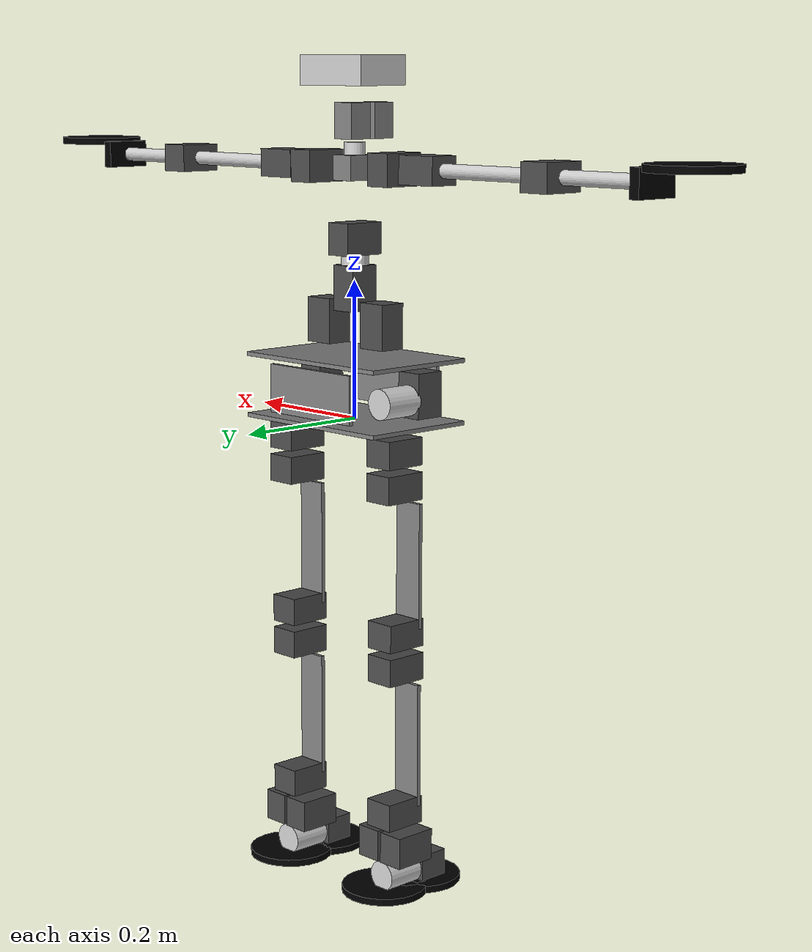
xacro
<?xml version="1.0" ?>
<robot xmlns:xacro="http://ros.org/wiki/xacro" name="tflow_model">

    <xacro:property name="dynamixel_mx28_x" value="0.0356"/>
    <xacro:property name="dynamixel_mx28_y" value="0.0355"/>
    <xacro:property name="dynamixel_mx28_z" value="0.0506"/>
    <xacro:property name="dynamixel_mx28_weight" value="0.072"/>

    <xacro:property name="dynamixel_mx64_x" value="0.0402"/>
    <xacro:property name="dynamixel_mx64_y" value="0.041"/>
    <xacro:property name="dynamixel_mx64_z" value="0.0611"/>
    <xacro:property name="dynamixel_mx64_weight" value="0.126"/>

    <xacro:property name="dynamixel_mx106_x" value="0.0402"/>
    <xacro:property name="dynamixel_mx106_y" value="0.046"/>
    <xacro:property name="dynamixel_mx106_z" value="0.0651"/>
    <xacro:property name="dynamixel_mx106_weight" value="0.153"/>

    <xacro:macro name="dynamixelmx28" params="roll pitch yaw x y z">
        <visual>
            <geometry>
                <box size="${dynamixel_mx28_x} ${dynamixel_mx28_y} ${dynamixel_mx28_z}"/>
            </geometry>
            <origin rpy="${roll} ${pitch} ${yaw}" xyz="${x} ${y} ${z}"/>
            <material name="silver">
                <color rgba="0.5 0.5 0.5 1"/>
            </material>
        </visual>
        <collision>
          <geometry>
            <box size="${dynamixel_mx28_x} ${dynamixel_mx28_y} ${dynamixel_mx28_z}"/>
          </geometry>
          <origin rpy="${roll} ${pitch} ${yaw}" xyz="${x} ${y} ${z}"/>
        </collision>
        <inertial>
            <mass value="${dynamixel_mx28_weight}"/>
            <inertia ixx="0.0" ixy="0.0" ixz="0.0" iyy="0.0" iyz="0.0" izz="0.0"/>
        </inertial>
    </xacro:macro>

    <xacro:macro name="dynamixelmx64" params="roll pitch yaw x y z">
        <visual>
            <geometry>
                <box size="${dynamixel_mx64_x} ${dynamixel_mx64_y} ${dynamixel_mx64_z}"/>
            </geometry>
            <origin rpy="${roll} ${pitch} ${yaw}" xyz="${x} ${y} ${z}"/>
            <material name="silver">
                <color rgba="0.5 0.5 0.5 1"/>
            </material>
        </visual>
        <collision>
          <geometry>
            <box size="${dynamixel_mx64_x} ${dynamixel_mx64_y} ${dynamixel_mx64_z}"/>
          </geometry>
          <origin rpy="${roll} ${pitch} ${yaw}" xyz="${x} ${y} ${z}"/>
        </collision>
        <inertial>
            <mass value="${dynamixel_mx64_weight}"/>
            <inertia ixx="0.0" ixy="0.0" ixz="0.0" iyy="0.0" iyz="0.0" izz="0.0"/>
        </inertial>
    </xacro:macro>

    <xacro:macro name="dynamixelmx106" params="roll pitch yaw x y z">
        <visual>
            <geometry>
                <box size="${dynamixel_mx106_x} ${dynamixel_mx106_y} ${dynamixel_mx106_z}"/>
            </geometry>
            <origin rpy="${roll} ${pitch} ${yaw}" xyz="${x} ${y} ${z}"/>
            <material name="silver">
                <color rgba="0.3 0.3 0.3 1"/>
            </material>
        </visual>
        <collision>
          <geometry>
            <box size="${dynamixel_mx106_x} ${dynamixel_mx106_y} ${dynamixel_mx106_z}"/>
          </geometry>
          <origin rpy="${roll} ${pitch} ${yaw}" xyz="${x} ${y} ${z}"/>
        </collision>
        <inertial>
            <mass value="${dynamixel_mx106_weight}"/>
            <inertia ixx="0.0" ixy="0.0" ixz="0.0" iyy="0.0" iyz="0.0" izz="0.0"/>
        </inertial>
    </xacro:macro>

    <xacro:macro name="link_cylinder" params="le r roll pitch yaw x y z">
        <visual>
            <geometry>
                <cylinder length="${le}" radius="${r}"/>
            </geometry>
            <origin rpy="${roll} ${pitch} ${yaw}" xyz="${x} ${y} ${z}"/>
            <material name="white">
                <color rgba="0.8 0.8 0.8 1"/>
            </material>
        </visual>
        <collision>
          <geometry>
            <cylinder length="${le}" radius="${r}"/>
          </geometry>
          <origin rpy="${roll} ${pitch} ${yaw}" xyz="${x} ${y} ${z}"/>
        </collision>
        <inertial>
            <mass value="${le*r}"/>
            <inertia ixx="0.0" ixy="0.0" ixz="0.0" iyy="0.0" iyz="0.0" izz="0.0"/>
        </inertial>
    </xacro:macro>

    <xacro:macro name="telapak" params="le r roll pitch yaw x y z">
        <visual>
            <geometry>
                <cylinder length="${le}" radius="${r}"/>
            </geometry>
            <origin rpy="${roll} ${pitch} ${yaw}" xyz="${x} ${y} ${z}"/>
            <material name="black">
                <color rgba="0 0 0 1"/>
            </material>
        </visual>
        <collision>
          <geometry>
            <cylinder length="${le}" radius="${r}"/>
          </geometry>
          <origin rpy="${roll} ${pitch} ${yaw}" xyz="${x} ${y} ${z}"/>
        </collision>
        <inertial>
            <mass value="${le*r}"/>
            <inertia ixx="0.0" ixy="0.0" ixz="0.0" iyy="0.0" iyz="0.0" izz="0.0"/>
        </inertial>
    </xacro:macro>

    <xacro:macro name="link_box" params="bx by bz roll pitch yaw x y z">
        <visual>
            <geometry>
                <box size="${bx} ${by} ${bz}"/>
            </geometry>
            <origin rpy="${roll} ${pitch} ${yaw}" xyz="${x} ${y} ${z}"/>
            <material name="black">
                <color rgba="0 0 0 1"/>
            </material>
        </visual>
        <collision>
          <geometry>
            <box size="${bx} ${by} ${bz}"/>
          </geometry>
          <origin rpy="${roll} ${pitch} ${yaw}" xyz="${x} ${y} ${z}"/>
        </collision>
        <inertial>
            <mass value="${bx*by*bz}"/>
            <inertia ixx="0.0" ixy="0.0" ixz="0.0" iyy="0.0" iyz="0.0" izz="0.0"/>
        </inertial>
    </xacro:macro>

     <xacro:macro name="link_box2" params="bx by bz roll pitch yaw x y z">
        <visual>
            <geometry>
                <box size="${bx} ${by} ${bz}"/>
            </geometry>
            <origin rpy="${roll} ${pitch} ${yaw}" xyz="${x} ${y} ${z}"/>
            <material name="white">
                <color rgba="0.8 0.8 0.8 1"/>
            </material>
        </visual>
        <collision>
          <geometry>
            <box size="${bx} ${by} ${bz}"/>
          </geometry>
          <origin rpy="${roll} ${pitch} ${yaw}" xyz="${x} ${y} ${z}"/>
        </collision>
        <inertial>
            <mass value="${bx*by*bz}"/>
            <inertia ixx="0.0" ixy="0.0" ixz="0.0" iyy="0.0" iyz="0.0" izz="0.0"/>
        </inertial>
    </xacro:macro>

    <xacro:macro name="telapak_tangan" params="le r roll pitch yaw x y z">
        <visual>
            <geometry>
                <cylinder length="${le}" radius="${r}"/>
            </geometry>
            <origin rpy="${roll} ${pitch} ${yaw}" xyz="${x} ${y} ${z}"/>
            <material name="black">
                <color rgba="0 0 0 1"/>
            </material>
        </visual>
        <collision>
          <geometry>
            <cylinder length="${le}" radius="${r}"/>
          </geometry>
          <origin rpy="${roll} ${pitch} ${yaw}" xyz="${x} ${y} ${z}"/>
        </collision>
        <inertial>
            <mass value="${le*r}"/>
            <inertia ixx="0.0" ixy="0.0" ixz="0.0" iyy="0.0" iyz="0.0" izz="0.0"/>
        </inertial>
    </xacro:macro>

<!-- BASE -->

  <link name="base_link">
    <visual>
      <geometry>
	<box size="0 0 0"/>
      </geometry>
      <origin rpy="0 0 0" xyz="0 0 0"/>
   	<material name = "DarkGray" >
     		<color rgba = "0.3 0.3 0.3 1.0" />
      	</material>
    </visual>

    <collision>
      <geometry>
	<box size="0.18 0.12 0.08"/>
      </geometry>
      <origin rpy="0 0 0" xyz="0 0 0"/>
    </collision>
    <inertial>
	<mass value="1"/>
	<inertia ixx="1.0" ixy="0.0" ixz="0.0" iyy="1.0" iyz="0.0" izz="1.0"/>
    </inertial>
  </link>

    <!-- PERUT -->
    <link name="servo_perut_roll_1">
        <xacro:dynamixelmx106 roll="0.0" pitch="0.0" yaw = "1.57" x="0" y="0" z="0"/>
    </link>

    <link name="servo_perut_roll_2">
        <xacro:dynamixelmx106 roll="0.0" pitch="0.0" yaw = "-1.57" x="0" y="0" z="0"/>
    </link>

    <link name="servo_perut_pitch">
        <xacro:dynamixelmx106 roll="0.0" pitch="0.0" yaw = "0" x="0" y="0" z="0"/>
    </link>

    <link name="link_perut_yaw">
        <xacro:link_cylinder le="0.04" r="0.02" roll="0.0" pitch="0.0" yaw ="0" x="0" y="0" z="0.03"/>
    </link>

    <link name="servo_perut_yaw">
        <xacro:dynamixelmx106 roll="-1.57" pitch="0.0" yaw = "0" x="0" y="0" z="0.02"/>
    </link>
    <!-- PERUT_END -->

    <!-- Kepala -->

    <link name="servo_kepala_yaw">
        <xacro:dynamixelmx28 roll="1.57" pitch="0.0" yaw = "0" x="0" y="0" z="0.0"/>
    </link>

    <link name="link_leher">
    	<xacro:link_cylinder le="0.031" r="0.015" roll="0.0" pitch="0.0" yaw ="0" x="0" y="0" z="0.0	"/>
   	</link>

    <link name="servo_kepala_pitch">
        <xacro:dynamixelmx28 roll="0.00" pitch="0.0" yaw = "0" x="0" y="-0.04" z="0.0"/>
    </link>

    <link name="servo_kepala_roll">
        <xacro:dynamixelmx28 roll="0.00" pitch="0.0" yaw = "0" x="0" y="0.00" z="0.0"/>
    </link>

    <link name="kepala">
    	<xacro:link_box2 bx="0.125" by="0.085" bz="0.042" roll="0.0" pitch="0.0" yaw ="0" x="0" y="0" z="0.07	"/>
   	</link>

    <!-- Kepala_END -->

    <!-- Tangan_Kanan -->
    <link name="servo_bahu_kanan_roll">
        <xacro:dynamixelmx106 roll="-1.57" pitch="0" yaw = "0" x="0" y="0" z="0"/>
    </link>

    <link name="servo_bahu_kanan_pitch">
        <xacro:dynamixelmx106 roll="0" pitch="1.57" yaw = "0" x="0" y="0" z="0"/>
    </link>

    <link name="link_siku_kanan">
        <xacro:link_cylinder le="0.195" r="0.01" roll="0.0" pitch="1.57" yaw ="0" x="${0.195/2}" y="0" z="0.0"/>
    </link>

    <link name="servo_siku_kanan_pitch">
        <xacro:dynamixelmx106 roll="0" pitch="1.57" yaw = "1.57" x="0" y="0" z="0"/>
    </link>

    <link name="link_lengan_kanan">
        <xacro:link_cylinder le="0.15" r="0.01" roll="0.0" pitch="1.57" yaw ="0" x="${-(0.16/2)}" y="0" z="0.0"/>
    </link>

    <link name="link_telapak_kanan">
        <xacro:link_box bx="0.015" by="0.07" bz="0.04" roll="0.0" pitch="0" yaw ="0" x="0" y="0" z="0.0"/>
    </link>

    <link name="telapak_tangan_kanan">
        <xacro:telapak_tangan le="0.01" r="${0.125/2}" roll="0.0" pitch="0" yaw ="0" x="0" y="0" z="0.0"/>
    </link>
    <!-- Tangan_Kanan_END -->

    <!-- Tangan_Kiri -->
    <link name="servo_bahu_kiri_roll">
        <xacro:dynamixelmx106 roll="1.57" pitch="0" yaw = "0" x="0" y="0" z="0"/>
    </link>

    <link name="servo_bahu_kiri_pitch">
        <xacro:dynamixelmx106 roll="0" pitch="-1.57" yaw = "0" x="0" y="0" z="0"/>
    </link>

    <link name="link_siku_kiri">
        <xacro:link_cylinder le="0.195" r="0.01" roll="0.0" pitch="-1.57" yaw ="0" x="${-(0.195/2)}" y="0" z="0.0"/>
    </link>

    <link name="servo_siku_kiri_pitch">
        <xacro:dynamixelmx106 roll="0" pitch="1.57" yaw = "1.57" x="0" y="0" z="0"/>
    </link>

    <link name="link_lengan_kiri">
        <xacro:link_cylinder le="0.15" r="0.01" roll="0.0" pitch="-1.57" yaw ="0" x="${(0.16/2)}" y="0" z="0.0"/>
    </link>

    <link name="link_telapak_kiri">
        <xacro:link_box bx="0.015" by="0.07" bz="0.04" roll="0.0" pitch="0" yaw ="0" x="0" y="0" z="0.0"/>
    </link>

    <link name="telapak_tangan_kiri">
        <xacro:telapak_tangan le="0.01" r="${0.125/2}" roll="0.0" pitch="0" yaw ="0" x="0" y="0" z="0.0"/>
    </link>
    <!-- Tangan_Kiri_END -->

     <!-- Kepala -->
    <joint name="perut_to_kepala" type="fixed">
        <parent link="servo_perut_yaw"/>
        <child link="servo_kepala_yaw"/> <!--servo_kepala_roll-->
        <origin rpy="0 0 0" xyz="0 0.0 0.12"/>
        <limit effort="300" velocity="0.1" lower="-1.57" upper="1.57"/>
        <dynamics damping="50" friction="1"/>
        <axis xyz="0 0 1" />
    </joint>

    <joint name="tflow_32_kyaw" type="revolute"> <!--kepala_yaw-->
        <parent link="servo_kepala_yaw"/>
        <child link="link_leher"/> <!--servo_kepala_roll-->
        <origin rpy="0 0 0" xyz="0 0.0 0.02"/>
        <limit effort="300" velocity="0.1" lower="-3.14" upper="3.14"/>
        <dynamics damping="50" friction="1"/>
        <axis xyz="0 0 1" />
    </joint>

    <joint name="tflow_33_kpitch" type="revolute"> <!--kepala_pitch-->
        <parent link="link_leher"/>
        <child link="servo_kepala_pitch"/> <!--servo_kepala_roll-->
        <origin rpy="0 0 0" xyz="0 0.0 0.045"/>
        <limit effort="300" velocity="0.1" lower="-1.57" upper="1.57"/>
        <dynamics damping="50" friction="1"/>
        <axis xyz="0 1 0" />
    </joint>

    <joint name="joint_kepala_yaw" type="fixed">
        <parent link="servo_kepala_pitch"/>
        <child link="servo_kepala_roll"/> <!--servo_kepala_roll-->
        <origin rpy="0 0 0" xyz="0 0.005 0.0"/>
        <limit effort="300" velocity="0.1" lower="-3.14" upper="3.14"/>
        <dynamics damping="50" friction="1"/>
        <axis xyz="0 0 1" />
    </joint>

    <joint name="tflow_34_kroll" type="revolute"> <!--kepala_roll-->
        <parent link="servo_kepala_roll"/>
        <child link="kepala"/> <!--servo_kepala_roll-->
        <origin rpy="0 0 0" xyz="0 0.0 0.0"/>
        <limit effort="300" velocity="0.1" lower="-1.57" upper="1.57"/>
        <dynamics damping="50" friction="1"/>
        <axis xyz="1 0 0" />
    </joint>

    <!-- Kepala_END -->

    <!-- PERUT -->
    <joint name="joint_perut_roll" type="fixed">
        <parent link="base_link"/>
        <child link="servo_perut_roll_1"/>
        <origin rpy="0 0 0" xyz="0.055 0.0 0.14"/>
        <limit effort="300" velocity="0.1" lower="-1.57" upper="1.57"/>
        <dynamics damping="50" friction="1"/>
        <axis xyz="1 0 0" />
    </joint>

    <joint name="joint_perut_roll_2" type="fixed">
        <parent link="base_link"/>
        <child link="servo_perut_roll_2"/>
        <origin rpy="0 0 0" xyz="-0.055 0.0 0.14"/>
        <limit effort="300" velocity="0.1" lower="-1.57" upper="1.57"/>
        <dynamics damping="50" friction="1"/>
        <axis xyz="1 0 0" />
    </joint>

    <joint name="tflow_13_proll" type="revolute"> <!--perut_roll-->
        <parent link="servo_perut_roll_1"/>
        <child link="servo_perut_pitch"/>
        <origin rpy="0 0 0" xyz="-0.055 0.0 0.05"/>
        <limit effort="300" velocity="0.1" lower="-1.57" upper="1.57"/>
        <dynamics damping="50" friction="1"/>
        <axis xyz="1 0 0" />
    </joint>

    <joint name="tflow_14_ppitch" type="revolute"> <!--perut_pitch-->
        <parent link="servo_perut_pitch"/>
        <child link="link_perut_yaw"/>
        <origin rpy="0 0 0" xyz="0 0.0 0.0"/>
        <limit effort="300" velocity="0.1" lower="-1.57" upper="1.57"/>
        <dynamics damping="50" friction="1"/>
        <axis xyz="0 1 0" />
    </joint>

    <joint name="tflow_15_pyaw" type="revolute"> <!--perut_yaw-->
        <parent link="link_perut_yaw"/>
        <child link="servo_perut_yaw"/>
        <origin rpy="0 0 0" xyz="0.0 0.0 0.05"/>
        <limit effort="300" velocity="0.1" lower="-1.57" upper="1.57"/>
        <dynamics damping="50" friction="1"/>
        <axis xyz="0 0 1" />
    </joint>

    <!-- PERUT_END -->

    <!-- Tangan_Kanan -->
    <joint name="joint_bahu_kanan_roll" type="fixed">
        <parent link="servo_kepala_yaw"/>
        <child link="servo_bahu_kanan_roll"/>
        <origin rpy="0 0 0" xyz="0.08 0.0 0.0"/>
        <limit effort="300" velocity="0.1" lower="-1.57" upper="1.57"/>
        <dynamics damping="50" friction="1"/>
        <axis xyz="0 0 1" />
    </joint>

    <joint name="tflow_17_bkroll" type="revolute"> <!--bahu_kanan_roll-->
        <parent link="servo_bahu_kanan_roll"/>
        <child link="servo_bahu_kanan_pitch"/>
        <origin rpy="0 0 0" xyz="0.065 0.0 0.0015"/>
        <limit effort="300" velocity="0.1" lower="-3.14" upper="3.14"/>
        <dynamics damping="50" friction="1"/>
        <axis xyz="1 0 0" />
    </joint>

    <joint name="tflow_19_bkyaw" type="revolute"> <!--bahu_kanan_yaw-->
        <parent link="servo_bahu_kanan_pitch"/>
        <child link="link_siku_kanan"/>
        <origin rpy="0 0 0" xyz="0.03 0.0 0.00"/>
        <limit effort="300" velocity="0.1" lower="-2.00" upper="2.00"/>
        <dynamics damping="50" friction="1"/>
        <axis xyz="0 1 0" />
    </joint>

    <joint name="tflow_23_skyaw" type="revolute"> <!--siku_kanan_yaw-->
        <parent link="link_siku_kanan"/>
        <child link="servo_siku_kanan_pitch"/>
        <origin rpy="0 0 0" xyz="0.195 0.0 0.00"/>
        <limit effort="300" velocity="0.1" lower="-2.00" upper="2.00"/>
        <dynamics damping="50" friction="1"/>
        <axis xyz="0 0 1" />
    </joint>

    <joint name="joint_lengan_kanan_yaw" type="fixed">
        <parent link="servo_siku_kanan_pitch"/>
        <child link="link_lengan_kanan"/>
        <origin rpy="0 0 0" xyz="0.16 0.0 0.00"/>
        <limit effort="300" velocity="0.1" lower="-1.57" upper="1.57"/>
        <dynamics damping="50" friction="1"/>
        <axis xyz="0 0 1" />
    </joint>

    <joint name="joint_tangan_kanan" type="fixed">
        <parent link="link_lengan_kanan"/>
        <child link="link_telapak_kanan"/>
        <origin rpy="0 0 0" xyz="${0.015/2} 0.0 0.0"/>
        <limit effort="300" velocity="0.1" lower="-3.14" upper="3.14"/>
        <dynamics damping="50" friction="1"/>
    </joint>

    <joint name="tangan_kanan_EOF" type="fixed">
        <parent link="link_telapak_kanan"/>
        <child link="telapak_tangan_kanan"/>
        <origin rpy="0 0 0" xyz="${0.125/2} 0.0 0.02"/>
        <limit effort="300" velocity="0.1" lower="-3.14" upper="3.14"/>
        <dynamics damping="50" friction="1"/>
    </joint>
    <!-- Tangan_Kanan_END -->

    <!-- Tangan_Kiri -->
    <joint name="joint_bahu_kiri_yaw" type="fixed">
        <parent link="servo_kepala_yaw"/>
        <child link="servo_bahu_kiri_roll"/>
        <origin rpy="0 0 0" xyz="-0.08 0.0 0.0"/>
        <limit effort="300" velocity="0.1" lower="-1.57" upper="1.57"/>
        <dynamics damping="50" friction="1"/>
        <axis xyz="0 0 1" />
        </joint>

    <joint name="tflow_16_bkiroll" type="revolute"> <!--bahu_kiri_roll-->
        <parent link="servo_bahu_kiri_roll"/>
        <child link="servo_bahu_kiri_pitch"/>
        <origin rpy="0 0 0" xyz="-0.065 0.0 0.0015"/>
        <limit effort="300" velocity="0.1" lower="-3.14" upper="3.14"/>
        <dynamics damping="50" friction="1"/>
        <axis xyz="1 0 0" />
    </joint>

    <joint name="tflow_18_bkiyaw" type="revolute"> <!--bahu_kiri_yaw-->
        <parent link="servo_bahu_kiri_pitch"/>
        <child link="link_siku_kiri"/>
        <origin rpy="0 0 0" xyz="-0.03 0.0 0.00"/>
        <limit effort="300" velocity="0.1" lower="-2.00" upper="2.00"/>
        <dynamics damping="50" friction="1"/>
        <axis xyz="0 1 0" />
    </joint>

    <joint name="tflow_22_skiyaw" type="revolute"> <!--siku_kiri_yaw-->
        <parent link="link_siku_kiri"/>
        <child link="servo_siku_kiri_pitch"/>
        <origin rpy="0 0 0" xyz="-0.195 0.0 0.00"/>
        <limit effort="300" velocity="0.1" lower="-2.00" upper="2.00"/>
        <dynamics damping="50" friction="1"/>
        <axis xyz="0 0 1" />
    </joint>

    <joint name="joint_lengan_kiri_yaw" type="fixed">
        <parent link="servo_siku_kiri_pitch"/>
        <child link="link_lengan_kiri"/>
        <origin rpy="0 0 0" xyz="-0.16 0.0 0.00"/>
        <limit effort="300" velocity="0.1" lower="-1.57" upper="1.57"/>
        <dynamics damping="50" friction="1"/>
        <axis xyz="0 0 1" />
    </joint>

    <joint name="joint_tangan_kiri" type="fixed">
        <parent link="link_lengan_kiri"/>
        <child link="link_telapak_kiri"/>
        <origin rpy="0 0 0" xyz="${-(0.015/2)} 0.0 0.0"/>
        <limit effort="300" velocity="0.1" lower="-3.14" upper="3.14"/>
        <dynamics damping="50" friction="1"/>
    </joint>

    <joint name="tangan_kiri_EOF" type="fixed">
        <parent link="link_telapak_kiri"/>
        <child link="telapak_tangan_kiri"/>
        <origin rpy="0 0 0" xyz="${-(0.125/2)} 0.0 0.02"/>
        <limit effort="300" velocity="0.1" lower="-3.14" upper="3.14"/>
        <dynamics damping="50" friction="1"/>
    </joint>

    <!-- Tangan_Kiri_END -->

<!-- KAKI -->

<!-- TEMPAT NUC -->
     <xacro:macro name="link_nuc" params="bx by bz roll pitch yaw x y z">
        <visual>
            <geometry>
                <box size="${bx} ${by} ${bz}"/>
            </geometry>
            <origin rpy="${roll} ${pitch} ${yaw}" xyz="${x} ${y} ${z}"/>
            <material name="silver">
                <color rgba="0.5 0.5 0.5 1"/>
            </material>
        </visual>
        <collision>
          <geometry>
            <box size="${bx} ${by} ${bz}"/>
          </geometry>
          <origin rpy="${roll} ${pitch} ${yaw}" xyz="${x} ${y} ${z}"/>
        </collision>
        <inertial>
            <mass value="${bx*by*bz}"/>
            <inertia ixx="0.0" ixy="0.0" ixz="0.0" iyy="0.0" iyz="0.0" izz="0.0"/>
        </inertial>
    </xacro:macro>

    <link name="link_nucnuc_a">
        <xacro:link_nuc bx="0.266681" by="0.18" bz="0.006" roll="0.0" pitch="0" yaw ="0" x="0" y="0" z="0.0"/>
    </link>
    <link name="link_nucnuc_b">
        <xacro:link_nuc bx="0.266681" by="0.18" bz="0.006" roll="0.0" pitch="0" yaw ="0" x="0" y="0" z="0.0"/>
    </link>
    <link name="link_nucnuc_front">
        <xacro:link_nuc bx="0.166681" by="0.006" bz="0.07" roll="0.0" pitch="0" yaw ="0" x="0" y="0" z="0.0"/>
    </link>
    <link name="link_nucnuc_back">
        <xacro:link_nuc bx="0.166681" by="0.006" bz="0.07" roll="0.0" pitch="0" yaw ="0" x="0" y="0" z="0.0"/>
    </link>

    <joint name="joint_nuc_a" type="fixed">
        <parent link="base_link"/>
        <child link="link_nucnuc_a"/>
        <origin rpy="0 0 0" xyz="0 0 0.09"/>
        <limit effort="300" velocity="0.1" lower="-1.57" upper="1.57"/>
        <dynamics damping="50" friction="1"/>
        <axis xyz="0 0 0" />
    </joint>
    <joint name="joint_nuc_b" type="fixed">
        <parent link="base_link"/>
        <child link="link_nucnuc_b"/>
        <origin rpy="0 0 0" xyz="0 0 0"/>
        <limit effort="300" velocity="0.1" lower="-1.57" upper="1.57"/>
        <dynamics damping="50" friction="1"/>
        <axis xyz="0 0 0" />
    </joint>
    <joint name="joint_nuc_front" type="fixed">
        <parent link="base_link"/>
        <child link="link_nucnuc_front"/>
        <origin rpy="0 0 0" xyz="0 0.085 0.045"/>
        <limit effort="300" velocity="0.1" lower="-1.57" upper="1.57"/>
        <dynamics damping="50" friction="1"/>
        <axis xyz="0 0 0" />
    </joint>
    <joint name="joint_nuc_back" type="fixed">
        <parent link="base_link"/>
        <child link="link_nucnuc_back"/>
        <origin rpy="0 0 0" xyz="0 -0.085 0.045"/>
        <limit effort="300" velocity="0.1" lower="-1.57" upper="1.57"/>
        <dynamics damping="50" friction="1"/>
        <axis xyz="0 0 0" />
    </joint>

<!-- KAKI KANAN-->

     <xacro:macro name="joint_inv" params="bx by bz roll pitch yaw x y z">
        <visual>
            <geometry>
                <box size="${bx} ${by} ${bz}"/>
            </geometry>
            <origin rpy="${roll} ${pitch} ${yaw}" xyz="${x} ${y} ${z}"/>
            <material name="silver">
                <color rgba="0.5 0.5 0.5 1"/>
            </material>
        </visual>
        <collision>
          <geometry>
            <box size="${bx} ${by} ${bz}"/>
          </geometry>
          <origin rpy="${roll} ${pitch} ${yaw}" xyz="${x} ${y} ${z}"/>
        </collision>
        <inertial>
            <mass value="${bx*by*bz}"/>
            <inertia ixx="0.0" ixy="0.0" ixz="0.0" iyy="0.0" iyz="0.0" izz="0.0"/>
        </inertial>
    </xacro:macro>

    <link name="servo_11">
        <xacro:dynamixelmx106 roll="0.0" pitch="0.0" yaw = "0" x="0" y="0" z="0"/>
    </link>
    <link name="gearbox">
        <xacro:link_cylinder le="0.06" r="0.022" roll="1.57" pitch="0.0" yaw ="0" x="0" y="0" z="0.0"/>
    </link>

    <link name="jservo_11">
        <xacro:joint_inv bx="0" by="0" bz="0" roll="0.0" pitch="0" yaw ="0" x="0" y="0" z="0.0"/>
    </link>

    <joint name="servo_11" type="fixed">
        <parent link="base_link"/>
        <child link="servo_11"/>
        <origin rpy="0 0 0" xyz="0.1033405 -0.03 0.045"/>
        <limit effort="300" velocity="0.1" lower="-1.57" upper="1.57"/>
        <dynamics damping="50" friction="1"/>
        <axis xyz="0 0 0" />
    </joint>
    <joint name="gearbox" type="fixed">
        <parent link="servo_11"/>
        <child link="gearbox"/>
        <origin rpy="0 0 0" xyz="0 0.05 -0.007"/>
        <limit effort="300" velocity="0.1" lower="-2.00" upper="2.00"/>
        <dynamics damping="50" friction="1"/>
        <axis xyz="0 1 0" />
	</joint>
    <joint name="tflow_11_kyaw" type="revolute"> <!--joint_servo_11_yaw-->
        <parent link="gearbox"/>
        <child link="jservo_11"/>
        <origin rpy="0 0 0" xyz="0 0.0 0"/>
        <limit effort="300" velocity="0.1" lower="-3.14" upper="3.14"/>
        <dynamics damping="50" friction="1"/>
        <axis xyz="0 0 1" />
    </joint>

    <link name="servo_9">
        <xacro:dynamixelmx106 roll="1.57" pitch = "1.57" yaw = "0" x="0" y="0" z="0"/>
    </link>
    <joint name="servo_9" type="fixed">
        <parent link="jservo_11"/>
        <child link="servo_9"/>
        <origin rpy="0 0 0" xyz="0 0 -0.07"/>
        <limit effort="300" velocity="0.1" lower="-1.57" upper="1.57"/>
        <dynamics damping="50" friction="1"/>
        <axis xyz="0 0 0" />
    </joint>

    <link name="servo_9_inv">
        <xacro:joint_inv bx="0" by="0" bz="0" roll="0.0" pitch="0" yaw ="0" x="0" y="0" z="0.0"/>
    </link>
    <joint name="tflow_9_kpitch" type="revolute"> <!--joint_servo_9_pitch-->
        <parent link="servo_9"/>
        <child link="servo_9_inv"/>
        <origin rpy="0 0 0" xyz="0 0 0"/>
        <limit effort="300" velocity="0.1" lower="-3.14" upper="3.14"/>
        <dynamics damping="50" friction="1"/>
        <axis xyz="0 1 0" />
    </joint>

    <link name="servo_7">
        <xacro:dynamixelmx106 roll="1.57" pitch = "1.57" yaw = "0" x="0" y="0" z="0"/>
    </link>
    <joint name="servo_7" type="fixed">
        <parent link="servo_9_inv"/>
        <child link="servo_7"/>
        <origin rpy="0 0 0" xyz="0 0 -0.05"/>
        <limit effort="300" velocity="0.1" lower="-1.57" upper="1.57"/>
        <dynamics damping="50" friction="1"/>
        <axis xyz="0 0 0" />
    </joint>

    <link name="servo_7_inv">
        <xacro:joint_inv bx="0" by="0" bz="0" roll="0.0" pitch="0" yaw ="0" x="0" y="0" z="0.0"/>
    </link>
    <joint name="joint_7_inv" type="fixed">
        <parent link="servo_7"/>
        <child link="servo_7_inv"/>
        <origin rpy="0 0 0" xyz="0 0 0"/>
        <limit effort="300" velocity="0.1" lower="-1.57" upper="1.57"/>
        <dynamics damping="50" friction="1"/>
        <axis xyz="1 0 0" />
    </joint>

    <link name="link_7_front">
        <xacro:link_nuc bx="0.046" by="0.006" bz="0.183" roll="0.0" pitch="0" yaw ="0" x="0" y="0" z="-0.093"/>
    </link>
    <joint name="tflow_7_kroll" type="revolute"> <!--joint_servo_7_roll-->
        <parent link="servo_7_inv"/>
        <child link="link_7_front"/>
        <origin rpy="0 0 0" xyz="0 -0.03 -0.025"/>
        <limit effort="300" velocity="0.1" lower="-1.57" upper="1.57"/>
        <dynamics damping="50" friction="1"/>
        <axis xyz="1 0 0" />
    </joint>

    <link name="joint7x_link">
        <xacro:joint_inv bx="0" by="0" bz="0" roll="0.0" pitch="0" yaw ="0" x="0" y="0" z="-0.033"/>
    </link>
    <joint name="joint7x" type="revolute">
      <parent link="link_7_front"/>
      <child link="joint7x_link"/>
      <origin xyz="0 0 -0.17"/>
      <axis xyz="1 0 0" />
      <limit effort="300" velocity="0.1" lower="-1.57" upper="1.57"/>
      <mimic joint="tflow_7_kroll" multiplier="-1" offset="0" />
    </joint>

    <link name="servo7x_link">
        <xacro:dynamixelmx106 roll="1.57" pitch = "1.57" yaw = "0" x="0" y="0.025" z="0"/>
    </link>
    <joint name="servo7x" type="fixed">
        <parent link="joint7x_link"/>
        <child link="servo7x_link"/>
        <origin rpy="0 0 0" xyz="0 0.001 -0.02"/>
        <limit effort="300" velocity="0.1" lower="-1.57" upper="1.57"/>
        <dynamics damping="50" friction="1"/>
        <axis xyz="0 0 0" />
    </joint>

    <link name="servo5_link">
        <xacro:dynamixelmx106 roll="1.57" pitch = "1.57" yaw = "0" x="0" y="0.025" z="0"/>
    </link>
    <joint name="servo5" type="fixed">
        <parent link="servo7x_link"/>
        <child link="servo5_link"/>
        <origin rpy="0 0 0" xyz="0 0 -0.05"/>
        <limit effort="300" velocity="0.1" lower="-1.57" upper="1.57"/>
        <dynamics damping="50" friction="1"/>
        <axis xyz="0 0 0" />
    </joint>

    <link name="servo_5">
        <xacro:link_nuc bx="0.046" by="0.006" bz="0.183" roll="0.0" pitch="0" yaw ="0" x="0" y="0" z="-0.093"/>
    </link>
    <joint name="tflow_5_kroll" type="revolute"> <!--joint_servo_5_roll-->
        <parent link="servo5_link"/>
        <child link="servo_5"/>
        <origin rpy="0 0 0" xyz="0 0 -0.027"/>
        <limit effort="300" velocity="0.1" lower="-1.57" upper="1.57"/>
        <dynamics damping="50" friction="1"/>
        <axis xyz="1 0 0" />
    </joint>

    <link name="joint5x_link">
        <xacro:joint_inv bx="0" by="0" bz="0" roll="0.0" pitch="0" yaw ="0" x="0" y="0" z="-0.033"/>
    </link>
    <joint name="joint5x" type="revolute">
      <parent link="servo_5"/>
      <child link="joint5x_link"/>
      <origin xyz="0 0 -0.17"/>
      <axis xyz="1 0 0" />
      <limit effort="300" velocity="0.1" lower="-1.57" upper="1.57"/>
      <mimic joint="tflow_5_kroll" multiplier="-1" offset="0" />
    </joint>

    <link name="servo5x_link">
        <xacro:dynamixelmx106 roll="1.57" pitch = "1.57" yaw = "0" x="0" y="0.025" z="0"/>
    </link>
    <joint name="servo5x" type="fixed">
        <parent link="joint5x_link"/>
        <child link="servo5x_link"/>
        <origin rpy="0 0 0" xyz="0 0.001 -0.02"/>
        <limit effort="300" velocity="0.1" lower="-1.57" upper="1.57"/>
        <dynamics damping="50" friction="1"/>
        <axis xyz="0 0 0" />
    </joint>

    <link name="servo_1">
        <xacro:dynamixelmx106 roll="0" pitch="1.57" yaw = "0" x="0" y="0" z="0"/>
    </link>
    <link name="servo_bawahyaw">
        <xacro:dynamixelmx106 roll="1.57" pitch="0" yaw = "0" x="0" y="0" z="0"/>
    </link>
    <link name="servo_bawahyawx">
        <xacro:dynamixelmx106 roll="1.57" pitch="0" yaw = "0" x="0" y="0" z="0"/>
    </link>
    <link name="gearbox1">
        <xacro:link_cylinder le="0" r="0" roll="0" pitch="0.0" yaw ="0" x="0" y="0" z="0.0"/>
    </link>
    <link name="gearboxlala">
        <xacro:link_cylinder le="0.06" r="0.022" roll="1.57" pitch="0.0" yaw ="0" x="0" y="0" z="0.0"/>
    </link>
    <link name="jservo_1">
        <xacro:joint_inv bx="0" by="0" bz="0" roll="0.0" pitch="0" yaw ="0" x="0" y="0" z="0.0"/>
    </link>

    <joint name="servo_bawahyaw" type="fixed">
        <parent link="servo5x_link"/>
        <child link="servo_bawahyaw"/>
        <origin rpy="0 0 0" xyz="0.025 0.021 -0.05"/>
        <limit effort="300" velocity="0.1" lower="-2.00" upper="2.00"/>
        <dynamics damping="50" friction="1"/>
        <axis xyz="0 0 1" />
	</joint>
    <joint name="servo_bawahyawx" type="fixed">
        <parent link="servo_bawahyaw"/>
        <child link="servo_bawahyawx"/>
        <origin rpy="0 0 0" xyz="-0.045 0 0"/>
        <limit effort="300" velocity="0.1" lower="-2.00" upper="2.00"/>
        <dynamics damping="50" friction="1"/>
        <axis xyz="0 0 1" />
	</joint>
    <joint name="tflow_3_kroll" type="revolute"> <!--joint_servo_kaki_roll-->
        <parent link="servo_bawahyawx"/>
        <child link="gearbox1"/>
        <origin rpy="0 0 0" xyz="0 0.0 0"/>
        <limit effort="300" velocity="0.1" lower="-3.14" upper="3.14"/>
        <dynamics damping="50" friction="1"/>
        <axis xyz="1 0 0" />
    </joint>
    <joint name="gearboxlala" type="fixed">
        <parent link="gearbox1"/>
        <child link="gearboxlala"/>
        <origin rpy="0 0 0" xyz="0.02 0 -0.045"/>
        <limit effort="300" velocity="0.1" lower="-1.57" upper="1.57"/>
        <dynamics damping="50" friction="1"/>
        <axis xyz="0 0 0" />
    </joint>
    <joint name="tflow_1_kpitch" type="revolute">
        <parent link="gearboxlala"/>
        <child link="jservo_1"/>
        <origin rpy="0 0 0" xyz="0 0.0 0"/>
        <limit effort="300" velocity="0.1" lower="-3.14" upper="3.14"/>
        <dynamics damping="50" friction="1"/>
        <axis xyz="0 1 0" />
    </joint>
    <joint name="servo_1" type="fixed">
        <parent link="jservo_1"/>
        <child link="servo_1"/>
        <origin rpy="0 0 0" xyz="0.01 -0.055 0"/>
        <limit effort="300" velocity="0.1" lower="-1.57" upper="1.57"/>
        <dynamics damping="50" friction="1"/>
        <axis xyz="0 0 0" />
    </joint>

    <link name="fotd1">
        <xacro:telapak le="0.01" r="0.0621125" roll="0" pitch="0" yaw ="1.57" x="0" y="0" z="0.0"/>
    </link>
    <link name="fotb1">
        <xacro:telapak le="0.01" r="0.0621125" roll="0" pitch="0" yaw ="1.57" x="0" y="0" z="0.0"/>
    </link>

    <joint name="footd1" type="fixed">
        <parent link="servo_1"/>
        <child link="fotd1"/>
        <origin rpy="0 0 0" xyz="0 0 -0.023"/>
        <limit effort="300" velocity="0.1" lower="-2.00" upper="2.00"/>
        <dynamics damping="50" friction="1"/>
        <axis xyz="0 0 0" />
	</joint>
    <joint name="footb1" type="fixed">
        <parent link="fotd1"/>
        <child link="fotb1"/>
        <origin rpy="0 0 0" xyz="0 0.07 0"/>
        <limit effort="300" velocity="0.1" lower="-2.00" upper="2.00"/>
        <dynamics damping="50" friction="1"/>
        <axis xyz="0 0 0" />
	</joint>

<!-- KAKI KIRI-->

    <link name="servo_12">
        <xacro:dynamixelmx106 roll="0.0" pitch="0.0" yaw = "0" x="0" y="0" z="0"/>
    </link>
    <link name="gearboxki">
        <xacro:link_cylinder le="0.06" r="0.022" roll="1.57" pitch="0.0" yaw ="0" x="0" y="0" z="0.0"/>
    </link>
    <link name="jservo_12">
        <xacro:joint_inv bx="0" by="0" bz="0" roll="0.0" pitch="0" yaw ="0" x="0" y="0" z="0.0"/>
    </link>

    <joint name="servo_12" type="fixed">
        <parent link="base_link"/>
        <child link="servo_12"/>
        <origin rpy="0 0 0" xyz="-0.1033405 -0.03 0.045"/>
        <limit effort="300" velocity="0.1" lower="-1.57" upper="1.57"/>
        <dynamics damping="50" friction="1"/>
        <axis xyz="0 0 0" />
    </joint>
    <joint name="gearboxki" type="fixed">
        <parent link="servo_12"/>
        <child link="gearboxki"/>
        <origin rpy="0 0 0" xyz="0 0.05 -0.007"/>
        <limit effort="300" velocity="0.1" lower="-2.00" upper="2.00"/>
        <dynamics damping="50" friction="1"/>
        <axis xyz="0 1 0" />
	</joint>
    <joint name="tflow_12_kiyaw" type="revolute"> <!--joint_servo_12_yaw-->
        <parent link="gearboxki"/>
        <child link="jservo_12"/>
        <origin rpy="0 0 0" xyz="0 0.0 0"/>
        <limit effort="300" velocity="0.1" lower="-3.14" upper="3.14"/>
        <dynamics damping="50" friction="1"/>
        <axis xyz="0 0 1" />
    </joint>

    <link name="servo_10">
        <xacro:dynamixelmx106 roll="1.57" pitch = "1.57" yaw = "0" x="0" y="0" z="0"/>
    </link>
    <joint name="servo_10" type="fixed">
        <parent link="jservo_12"/>
        <child link="servo_10"/>
        <origin rpy="0 0 0" xyz="0 0 -0.07"/>
        <limit effort="300" velocity="0.1" lower="-1.57" upper="1.57"/>
        <dynamics damping="50" friction="1"/>
        <axis xyz="0 0 0" />
    </joint>

    <link name="servo_10_inv">
        <xacro:joint_inv bx="0" by="0" bz="0" roll="0.0" pitch="0" yaw ="0" x="0" y="0" z="0.0"/>
    </link>
    <joint name="tflow_10_kipitch" type="revolute"> <!--joint_servo_10_pitch-->
        <parent link="servo_10"/>
        <child link="servo_10_inv"/>
        <origin rpy="0 0 0" xyz="0 0 0"/>
        <limit effort="300" velocity="0.1" lower="-3.14" upper="3.14"/>
        <dynamics damping="50" friction="1"/>
        <axis xyz="0 1 0" />
    </joint>

    <link name="servo_8">
        <xacro:dynamixelmx106 roll="1.57" pitch = "1.57" yaw = "0" x="0" y="0" z="0"/>
    </link>
    <joint name="servo_8" type="fixed">
        <parent link="servo_10_inv"/>
        <child link="servo_8"/>
        <origin rpy="0 0 0" xyz="0 0 -0.05"/>
        <limit effort="300" velocity="0.1" lower="-1.57" upper="1.57"/>
        <dynamics damping="50" friction="1"/>
        <axis xyz="0 0 0" />
    </joint>

    <link name="servo_8_inv">
        <xacro:joint_inv bx="0" by="0" bz="0" roll="0.0" pitch="0" yaw ="0" x="0" y="0" z="0.0"/>
    </link>
    <joint name="joint_8_inv" type="fixed">
        <parent link="servo_8"/>
        <child link="servo_8_inv"/>
        <origin rpy="0 0 0" xyz="0 0 0"/>
        <limit effort="300" velocity="0.1" lower="-1.57" upper="1.57"/>
        <dynamics damping="50" friction="1"/>
        <axis xyz="1 0 0" />
    </joint>

    <link name="link_8_front">
        <xacro:link_nuc bx="0.046" by="0.006" bz="0.183" roll="0.0" pitch="0" yaw ="0" x="0" y="0" z="-0.093"/>
    </link>
    <joint name="tflow_8_kiroll" type="revolute"> <!--joint_servo_8_roll-->
        <parent link="servo_8_inv"/>
        <child link="link_8_front"/>
        <origin rpy="0 0 0" xyz="0 -0.03 -0.025"/>
        <limit effort="300" velocity="0.1" lower="-1.57" upper="1.57"/>
        <dynamics damping="50" friction="1"/>
        <axis xyz="1 0 0" />
    </joint>

    <link name="joint8x_link">
        <xacro:joint_inv bx="0" by="0" bz="0" roll="0.0" pitch="0" yaw ="0" x="0" y="0" z="-0.033"/>
    </link>
    <joint name="joint8x" type="revolute">
      <parent link="link_8_front"/>
      <child link="joint8x_link"/>
      <origin xyz="0 0 -0.17"/>
      <axis xyz="1 0 0" />
      <limit effort="300" velocity="0.1" lower="-1.57" upper="1.57"/>
      <mimic joint="tflow_8_kiroll" multiplier="-1" offset="0" />
    </joint>

    <link name="servo8x_link">
        <xacro:dynamixelmx106 roll="1.57" pitch = "1.57" yaw = "0" x="0" y="0.025" z="0"/>
    </link>
    <joint name="servo8x" type="fixed">
        <parent link="joint8x_link"/>
        <child link="servo8x_link"/>
        <origin rpy="0 0 0" xyz="0 0.001 -0.02"/>
        <limit effort="300" velocity="0.1" lower="-1.57" upper="1.57"/>
        <dynamics damping="50" friction="1"/>
        <axis xyz="0 0 0" />
    </joint>

    <link name="servo6_link">
        <xacro:dynamixelmx106 roll="1.57" pitch = "1.57" yaw = "0" x="0" y="0.025" z="0"/>
    </link>
    <joint name="servo6" type="fixed">
        <parent link="servo8x_link"/>
        <child link="servo6_link"/>
        <origin rpy="0 0 0" xyz="0 0 -0.05"/>
        <limit effort="300" velocity="0.1" lower="-1.57" upper="1.57"/>
        <dynamics damping="50" friction="1"/>
        <axis xyz="0 0 0" />
    </joint>

    <link name="servo_6">
        <xacro:link_nuc bx="0.046" by="0.006" bz="0.183" roll="0.0" pitch="0" yaw ="0" x="0" y="0" z="-0.093"/>
    </link>
    <joint name="tflow_6_kiroll" type="revolute"> <!--joint_servo_6_roll-->
        <parent link="servo6_link"/>
        <child link="servo_6"/>
        <origin rpy="0 0 0" xyz="0 0 -0.027"/>
        <limit effort="300" velocity="0.1" lower="-1.57" upper="1.57"/>
        <dynamics damping="50" friction="1"/>
        <axis xyz="1 0 0" />
    </joint>

 <link name="joint6x_link">
        <xacro:joint_inv bx="0" by="0" bz="0" roll="0.0" pitch="0" yaw ="0" x="0" y="0" z="-0.033"/>
    </link>
    <joint name="joint6x" type="revolute">
      <parent link="servo_6"/>
      <child link="joint6x_link"/>
      <origin xyz="0 0 -0.17"/>
      <axis xyz="1 0 0" />
      <limit effort="300" velocity="0.1" lower="-1.57" upper="1.57"/>
      <mimic joint="tflow_6_kiroll" multiplier="-1" offset="0" />
    </joint>

    <link name="servo6x_link">
        <xacro:dynamixelmx106 roll="1.57" pitch = "1.57" yaw = "0" x="0" y="0.025" z="0"/>
    </link>
    <joint name="servo6x" type="fixed">
        <parent link="joint6x_link"/>
        <child link="servo6x_link"/>
        <origin rpy="0 0 0" xyz="0 0.001 -0.02"/>
        <limit effort="300" velocity="0.1" lower="-1.57" upper="1.57"/>
        <dynamics damping="50" friction="1"/>
        <axis xyz="0 0 0" />
    </joint>

    <link name="servo_2">
        <xacro:dynamixelmx106 roll="0" pitch="1.57" yaw = "0" x="0" y="0" z="0"/>
    </link>
    <link name="servo_bawah2yaw">
        <xacro:dynamixelmx106 roll="1.57" pitch="0" yaw = "0" x="0" y="0" z="0"/>
    </link>
    <link name="servo_bawah2yawx">
        <xacro:dynamixelmx106 roll="1.57" pitch="0" yaw = "0" x="0" y="0" z="0"/>
    </link>
    <link name="gearbox2">
        <xacro:link_cylinder le="0" r="0" roll="0" pitch="0.0" yaw ="0" x="0" y="0" z="0.0"/>
    </link>
    <link name="gearbox2lala">
        <xacro:link_cylinder le="0.06" r="0.022" roll="1.57" pitch="0.0" yaw ="0" x="0" y="0" z="0.0"/>
    </link>
    <link name="jservo_2">
        <xacro:joint_inv bx="0" by="0" bz="0" roll="0.0" pitch="0" yaw ="0" x="0" y="0" z="0.0"/>
    </link>
    <joint name="servo_bawah2yaw" type="fixed">
        <parent link="servo6x_link"/>
        <child link="servo_bawah2yaw"/>
        <origin rpy="0 0 0" xyz="0.025 0.021 -0.05"/>
        <limit effort="300" velocity="0.1" lower="-2.00" upper="2.00"/>
        <dynamics damping="50" friction="1"/>
        <axis xyz="0 0 1" />
	</joint>
    <joint name="servo_bawah2yawx" type="fixed">
        <parent link="servo_bawah2yaw"/>
        <child link="servo_bawah2yawx"/>
        <origin rpy="0 0 0" xyz="-0.045 0 0"/>
        <limit effort="300" velocity="0.1" lower="-2.00" upper="2.00"/>
        <dynamics damping="50" friction="1"/>
        <axis xyz="0 0 1" />
	</joint>

    <joint name="tflow_4_kiroll" type="revolute"> <!--joint_servo_kaki_yawki-->
        <parent link="servo_bawah2yawx"/>
        <child link="gearbox2"/>
        <origin rpy="0 0 0" xyz="0 0.0 0"/>
        <limit effort="300" velocity="0.1" lower="-3.14" upper="3.14"/>
        <dynamics damping="50" friction="1"/>
        <axis xyz="1 0 0" />
    </joint>

    <joint name="gearbox2lala" type="fixed">
        <parent link="gearbox2"/>
        <child link="gearbox2lala"/>
        <origin rpy="0 0 0" xyz="0.02 0 -0.045"/>
        <limit effort="300" velocity="0.1" lower="-1.57" upper="1.57"/>
        <dynamics damping="50" friction="1"/>
        <axis xyz="0 0 0" />
    </joint>

    <joint name="tflow_2_kipitch" type="revolute"> <!--joint_servo_2_pitch-->
        <parent link="gearbox2lala"/>
        <child link="jservo_2"/>
        <origin rpy="0 0 0" xyz="0 0.0 0"/>
        <limit effort="300" velocity="0.1" lower="-3.14" upper="3.14"/>
        <dynamics damping="50" friction="1"/>
        <axis xyz="0 1 0" />
    </joint>

    <joint name="servo_2" type="fixed">
        <parent link="jservo_2"/>
        <child link="servo_2"/>
        <origin rpy="0 0 0" xyz="0.01 -0.055 0"/>
        <limit effort="300" velocity="0.1" lower="-1.57" upper="1.57"/>
        <dynamics damping="50" friction="1"/>
        <axis xyz="0 0 0" />
    </joint>

    <link name="fotd2">
        <xacro:telapak le="0.01" r="0.0621125" roll="0" pitch="0" yaw ="1.57" x="0" y="0" z="0.0"/>
    </link>
    <link name="fotb2">
        <xacro:telapak le="0.01" r="0.0621125" roll="0" pitch="0" yaw ="1.57" x="0" y="0" z="0.0"/>
    </link>

    <joint name="footd2" type="fixed">
        <parent link="servo_2"/>
        <child link="fotd2"/>
        <origin rpy="0 0 0" xyz="0 0 -0.023"/>
        <limit effort="300" velocity="0.1" lower="-2.00" upper="2.00"/>
        <dynamics damping="50" friction="1"/>
        <axis xyz="0 0 0" />
	</joint>
    <joint name="footb2" type="fixed">
        <parent link="fotd2"/>
        <child link="fotb2"/>
        <origin rpy="0 0 0" xyz="0 0.07 0"/>
        <limit effort="300" velocity="0.1" lower="-2.00" upper="2.00"/>
        <dynamics damping="50" friction="1"/>
        <axis xyz="0 0 0" />
	</joint>

</robot>
